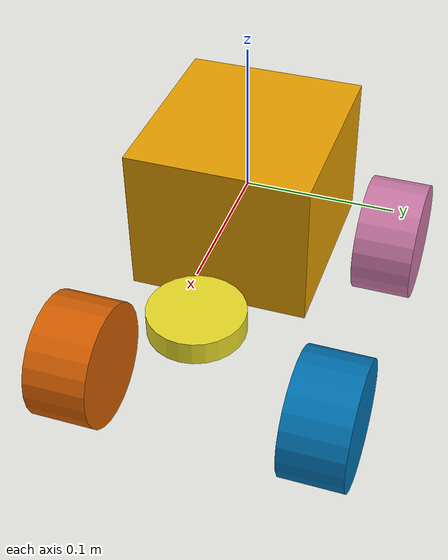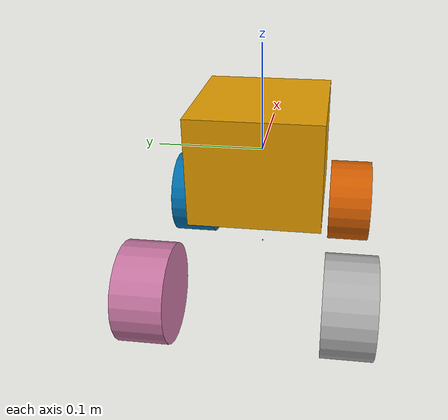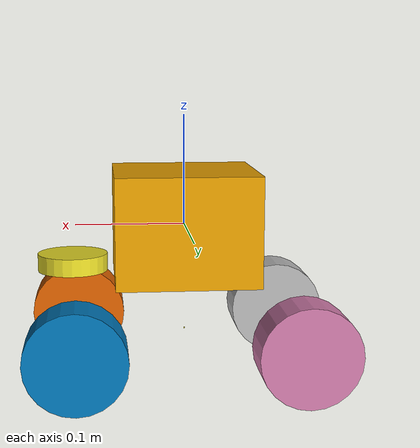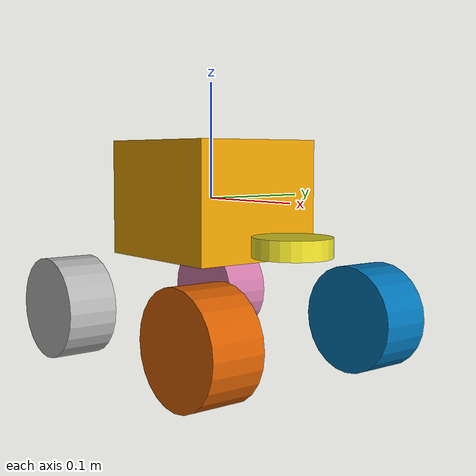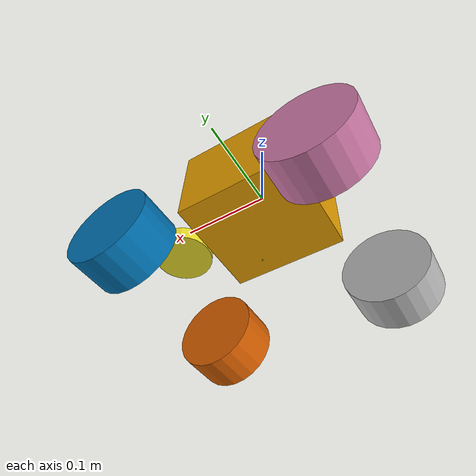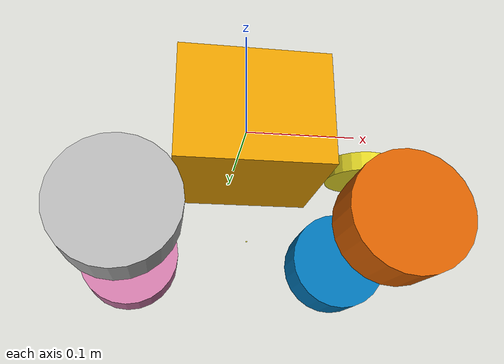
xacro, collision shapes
<?xml version="1.0"?>

<robot name="limo_four_diff" xmlns:xacro="http://ros.org/wiki/xacro">

    <xacro:include filename="$(find limo_description)/urdf/limo_xacro.xacro" />
    <xacro:arg name="tf_prefix" default="" />
    <xacro:property name="tf_prefix" value="$(arg tf_prefix)" />

    <!-- Variables -->
    <xacro:property name="M_PI" value="3.14159"/>

    <!-- Vehicle Geometries -->
    <xacro:property name="base_x_size" value="0.13" />
    <xacro:property name="base_y_size" value="0.12" />
    <xacro:property name="base_z_size" value="0.1" />

    <xacro:property name="wheelbase" value="0.2"/>
    <xacro:property name="track" value="0.13"/>
    <xacro:property name="wheel_vertical_offset" value="-0.10" />
    <xacro:property name="base_mass" value="2.1557"/>

    <xacro:property name="wheel_length" value="0.045" />
    <xacro:property name="wheel_radius" value="0.045" />

    <!-- Base link -->
    <link name="${tf_prefix}base_link">
        <visual>
            <origin xyz="0 0 -0.15" rpy="0 0 1.57" />
            <geometry>
                <mesh filename="file://$(find limo_description)/meshes/limo_base.dae" scale="1 1 1"/>
            </geometry>
        </visual>
        <collision>
            <!--origin xyz="0 0 -0.15" rpy="0 0 1.57" /-->
            <origin xyz="0 0 0" rpy="0 0 0" />
          <geometry>
              <box size="${base_x_size} ${base_y_size} ${base_z_size}"/>
          </geometry>
        </collision>
    </link>

    <link name="${tf_prefix}inertial_link">
        <inertial>
            <origin xyz="0.0 0.0 0.0" />
            <mass value="${base_mass}" />
            <inertia ixx="0.24" ixy="0" ixz="0"
                     iyy="0.96" iyz="0"
                     izz="0.96" />
        </inertial>
    </link>

    <joint name="${tf_prefix}inertial_joint" type="fixed">
        <origin xyz="0 0 0" rpy="0 0 0" />
        <parent link="${tf_prefix}base_link" />
        <child link="${tf_prefix}inertial_link" />
    </joint>

    <xacro:limo_laser parent_prefix="${tf_prefix}base_link" frame_prefix="${tf_prefix}laser">
        <origin xyz="0.103 0 -0.034" rpy="0 0 0"/>
    </xacro:limo_laser>

    <xacro:limo_imu parent_prefix="${tf_prefix}base_link" frame_prefix="${tf_prefix}imu">
        <origin xyz="0.0 0 -0.1" rpy="0 0 0"/>
    </xacro:limo_imu>

    <xacro:limo_wheel parent_prefix="${tf_prefix}base_link" wheel_prefix="${tf_prefix}front_left" reflect="1">
        <origin xyz="${wheelbase/2} ${track/2} ${wheel_vertical_offset}" rpy="0 0  0" />
    </xacro:limo_wheel>

    <xacro:limo_wheel parent_prefix="${tf_prefix}base_link" wheel_prefix="${tf_prefix}front_right" reflect="-1">
        <origin xyz="${wheelbase/2} ${-track/2} ${wheel_vertical_offset}" rpy="${M_PI} 0 0" />
    </xacro:limo_wheel>

    <xacro:limo_wheel parent_prefix="${tf_prefix}base_link" wheel_prefix="${tf_prefix}rear_left" reflect="1">
        <origin xyz="${-wheelbase/2} ${track/2} ${wheel_vertical_offset}" rpy="0 0 0" />
    </xacro:limo_wheel>

    <xacro:limo_wheel parent_prefix="${tf_prefix}base_link" wheel_prefix="${tf_prefix}rear_right" reflect="-1">
        <origin xyz="${-wheelbase/2} ${-track/2} ${wheel_vertical_offset}" rpy="${M_PI} 0 0" />
    </xacro:limo_wheel>
</robot>

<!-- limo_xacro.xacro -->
<robot name="limo_xacro" xmlns:xacro="http://ros.org/wiki/xacro">
    <xacro:macro name="limo_wheel" params="parent_prefix wheel_prefix reflect *joint_pose">
        <link name="${wheel_prefix}_wheel_link">
            <inertial>
                <origin xyz="0 0 0" />
                <mass value="0.5" />
                <inertia ixx="0.01055" ixy="0" ixz="0" iyy="0.00075" iyz="0" izz="0.01055" />
            </inertial>
            <visual>
                <origin xyz="0 0 0" rpy="0 0 0" />
                <geometry>
                    <mesh filename="file://$(find limo_description)/meshes/limo_wheel.dae" />
                </geometry>
            </visual>
            <collision>
              <origin xyz="0 ${wheel_length/2} 0" rpy="1.57 0 0" />
              <geometry>
                  <cylinder length="${wheel_length}" radius="${wheel_radius}" />
              </geometry>
            </collision>
        </link>

        <joint name="${wheel_prefix}_wheel" type="continuous">
            <parent link="${parent_prefix}"/>
            <child link="${wheel_prefix}_wheel_link"/>
            <xacro:insert_block name="joint_pose"/>
            <axis xyz="0 ${reflect*1} 0"/>
        </joint>
    </xacro:macro>

    <xacro:macro name="limo_laser" params="parent_prefix frame_prefix *joint_pose">
        <link name='${frame_prefix}_link'>
            <pose>0 0 0 0 0 0</pose>
            <inertial>
                <mass value="0.1"/>
                <origin xyz="0.0 0 0" rpy="0 0 0"/>
                <inertia
                    ixx="1e-6" ixy="0" ixz="0"
                    iyy="1e-6" iyz="0"
                    izz="1e-6"
                />
            </inertial>
            <visual name='laser_visual'>
                <origin xyz="0 0 0" rpy="0 0 0"/>
                <geometry>
                    <cylinder radius="0.02" length="0.01"/>
                </geometry>
                <material name='laser_material'>
                    <ambient>0.1 0.1 0.1 1</ambient>
                    <diffuse>0.1 0.1 0.2 1</diffuse>
                    <specular>0 0 0 0</specular>
                    <emissive>0 0 0 1</emissive>
                </material>
            </visual>
            <collision name='laser_collision'>
                <origin xyz="0 0 0" rpy="0 0 0"/>
                <geometry>
                    <cylinder radius="0.032" length="0.016"/>
                </geometry>
            </collision>
        </link>
        <joint type="fixed" name="${frame_prefix}_joint">
            <xacro:insert_block name="joint_pose"/>
            <child link="${frame_prefix}_link"/>
            <parent link="${parent_prefix}"/>
        </joint>
        <gazebo reference="${frame_prefix}_link">
            <material>Gazebo/Yellow</material>
        </gazebo>
    </xacro:macro>

    <xacro:macro name="limo_imu" params="parent_prefix frame_prefix  *joint_pose">
        <link name='${frame_prefix}_link'>
            <pose>0 0 0 0 0 0</pose>
            <inertial>
                <mass value="0.01"/>
                <origin xyz="0.0 0 0" rpy="0 0 0"/>
                <inertia
                    ixx="1e-7" ixy="0" ixz="0"
                    iyy="1e-7" iyz="0"
                    izz="1e-7"
                />
            </inertial>
            <visual name='imu_visual'>
                <origin xyz="0 0 0" rpy="0 0 0"/>
                <geometry>
                    <box size="0.001 0.001 0.001"/>
                </geometry>
                <material name='imu_material'>
                    <ambient>0.1 0.1 0.1 1</ambient>
                    <diffuse>0.1 0.1 0.2 1</diffuse>
                    <specular>0 0 0 0</specular>
                    <emissive>0 0 0 1</emissive>
                </material>
            </visual>
            <collision name='imu_collision'>
                <origin xyz="0 0 0" rpy="0 0 0"/>
                <geometry>
                    <box size="0.001 0.001 0.001"/>
                </geometry>
            </collision>
        </link>
        <joint type="fixed" name="${frame_prefix}_joint">
            <xacro:insert_block name="joint_pose"/>
            <child link="${frame_prefix}_link"/>
            <parent link="${parent_prefix}"/>
        </joint>
        <gazebo reference="${frame_prefix}_link">
            <material>Gazebo/Yellow</material>
        </gazebo>
    </xacro:macro>
</robot>
